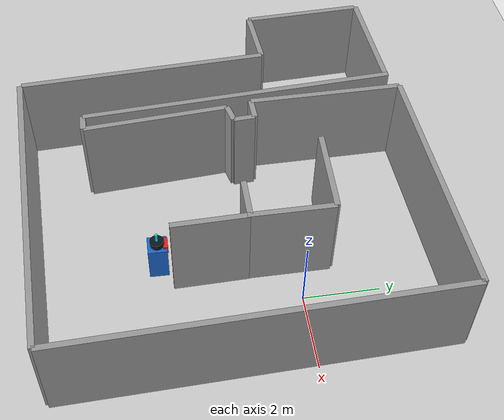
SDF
<sdf version="1.7">
 <world name="default">
  <plugin name="socnav_plugin" filename="libSocNavPlugin.so">
   <robot_name>robot</robot_name>
   <trajectory_file>/home/hunav_gz_classic_ws/SocNav3_trajectories/src0/advanced2_SFM_experiment_5-ONLY_14_STEPS-NO_VIDEO.json</trajectory_file>
   <human_slots>3</human_slots>
   <goal_angle_mesh>
    <angle_threshold>0.1</angle_threshold>
    <uri>/home/hunav_gz_classic_ws/src/socnav_gazebo_reproducer/meshes/advanced2_SFM_experiment_5-ONLY_14_STEPS-NO_VIDEO_goal_angle_00.stl</uri>
   </goal_angle_mesh>
  </plugin>
  <light name="sun" type="directional">
   <pose>0 0 10 0 -0 0</pose>
   <diffuse>0.8 0.8 0.8 1</diffuse>
   <specular>0.2 0.2 0.2 1</specular>
   <attenuation>
    <range>1000</range>
    <constant>0.9</constant>
    <linear>0.01</linear>
    <quadratic>0.001</quadratic>
   </attenuation>
   <direction>-0.5 0.1 -0.9</direction>
   <spot><inner_angle>0</inner_angle><outer_angle>0</outer_angle><falloff>0</falloff></spot>
  </light>
  <model name="ground_plane">
   <static>1</static>
   <link name="link">
    <collision name="collision">
     <geometry><plane><normal>0 0 1</normal><size>100 100</size></plane></geometry>
     <surface><friction><ode><mu>100</mu><mu2>50</mu2></ode></friction></surface>
    </collision>
    <visual name="visual">
     <cast_shadows>0</cast_shadows>
     <geometry><plane><normal>0 0 1</normal><size>100 100</size></plane></geometry>
     <material>
      <script><uri>file://media/materials/scripts/kitchen.material</uri><name>Kitchen/CounterTop_H</name></script>
     </material>
    </visual>
   </link>
  </model>
  <gravity>0 0 -9.8</gravity>
  <magnetic_field>6e-06 2.3e-05 -4.2e-05</magnetic_field>
  <atmosphere type="adiabatic"/>
  <physics type="ode">
   <max_step_size>0.001</max_step_size>
   <real_time_factor>1</real_time_factor>
   <real_time_update_rate>1000</real_time_update_rate>
  </physics>
  <scene><ambient>0.4 0.4 0.4 1</ambient><background>0.7 0.7 0.7 1</background><shadows>1</shadows></scene>
  <audio><device>default</device></audio>
  <spherical_coordinates>
   <surface_model>EARTH_WGS84</surface_model>
   <latitude_deg>0</latitude_deg>
   <longitude_deg>0</longitude_deg>
   <elevation>0</elevation>
   <heading_deg>0</heading_deg>
  </spherical_coordinates>
  <model name="robot">
   <pose>-1.4585878501570928 -3.5121129202272843 0.5 0 0 1.548966657125445</pose>
   <link name="link">
    <collision name="collision"><geometry><box><size>0.5 0.5 1.0</size></box></geometry></collision>
    <visual name="visual">
     <geometry><box><size>0.5 0.5 1.0</size></box></geometry>
     <material><ambient>0.1 0.4 0.8 1</ambient><diffuse>0.1 0.4 0.8 1</diffuse></material>
    </visual>
    <visual name="robot_top">
     <pose>0 0 0.58 0 0 0</pose>
     <geometry><cylinder><radius>0.18</radius><length>0.16</length></cylinder></geometry>
     <material><ambient>0.04 0.08 0.12 1</ambient><diffuse>0.04 0.08 0.12 1</diffuse></material>
    </visual>
    <visual name="robot_front">
     <pose>0.21 0 0.44 0 0 0</pose>
     <geometry><box><size>0.12 0.32 0.24</size></box></geometry>
     <material><ambient>0.9 0.12 0.08 1</ambient><diffuse>0.9 0.12 0.08 1</diffuse></material>
    </visual>
    <visual name="robot_sensor">
     <pose>0 0 0.78 0 0 0</pose>
     <geometry><cylinder><radius>0.035</radius><length>0.24</length></cylinder></geometry>
     <material><ambient>0.1 0.9 0.9 1</ambient><diffuse>0.1 0.9 0.9 1</diffuse></material>
    </visual>
   </link>
  </model>
  <model name="simple_world_test">
   <link name="Wall_0">
    <collision name="Wall_0_Collision">
     <geometry><box><size>1.0862999999999996 0.15 2.5</size></box></geometry>
     <pose>0 0 1.25 0 -0 0</pose>
    </collision>
    <visual name="Wall_0_Visual">
     <pose>0 0 1.25 0 -0 0</pose>
     <geometry><box><size>1.0862999999999996 0.15 2.5</size></box></geometry>
     <material>
      <script><uri>file://media/materials/scripts/gazebo.material</uri><name>Gazebo/Grey</name></script>
      <ambient>1 1 1 1</ambient>
     </material>
     <meta><layer>0</layer></meta>
    </visual>
    <pose>-1.4182750000000004 -1.2504999999999988 0 0 -0 0.0</pose>
   </link>
   <link name="Wall_1">
    <collision name="Wall_1_Collision">
     <geometry><box><size>1.938468147790931 0.15 2.5</size></box></geometry>
     <pose>0 0 1.25 0 -0 0</pose>
    </collision>
    <visual name="Wall_1_Visual">
     <pose>0 0 1.25 0 -0 0</pose>
     <geometry><box><size>1.938468147790931 0.15 2.5</size></box></geometry>
     <material>
      <script><uri>file://media/materials/scripts/gazebo.material</uri><name>Gazebo/Grey</name></script>
      <ambient>1 1 1 1</ambient>
     </material>
     <meta><layer>0</layer></meta>
    </visual>
    <pose>-0.8538250000000005 -2.219499999999999 0 0 -0 -1.548818441970472</pose>
   </link>
   <link name="Wall_2">
    <collision name="Wall_2_Collision">
     <geometry><box><size>2.1929999999999996 0.15 2.5</size></box></geometry>
     <pose>0 0 1.25 0 -0 0</pose>
    </collision>
    <visual name="Wall_2_Visual">
     <pose>0 0 1.25 0 -0 0</pose>
     <geometry><box><size>2.1929999999999996 0.15 2.5</size></box></geometry>
     <material>
      <script><uri>file://media/materials/scripts/gazebo.material</uri><name>Gazebo/Grey</name></script>
      <ambient>1 1 1 1</ambient>
     </material>
     <meta><layer>0</layer></meta>
    </visual>
    <pose>-0.8857750000000006 -0.22199999999999864 0 0 -0 1.5707963267948966</pose>
   </link>
   <link name="Wall_3">
    <collision name="Wall_3_Collision">
     <geometry><box><size>2.30196984341672 0.15 2.5</size></box></geometry>
     <pose>0 0 1.25 0 -0 0</pose>
    </collision>
    <visual name="Wall_3_Visual">
     <pose>0 0 1.25 0 -0 0</pose>
     <geometry><box><size>2.30196984341672 0.15 2.5</size></box></geometry>
     <material>
      <script><uri>file://media/materials/scripts/gazebo.material</uri><name>Gazebo/Grey</name></script>
      <ambient>1 1 1 1</ambient>
     </material>
     <meta><layer>0</layer></meta>
    </visual>
    <pose>-2.0359750000000005 0.9170000000000016 0 0 -0 3.10465936029852</pose>
   </link>
   <link name="Wall_4">
    <collision name="Wall_4_Collision">
     <geometry><box><size>3.1989974058288966 0.15 2.5</size></box></geometry>
     <pose>0 0 1.25 0 -0 0</pose>
    </collision>
    <visual name="Wall_4_Visual">
     <pose>0 0 1.25 0 -0 0</pose>
     <geometry><box><size>3.1989974058288966 0.15 2.5</size></box></geometry>
     <material>
      <script><uri>file://media/materials/scripts/gazebo.material</uri><name>Gazebo/Grey</name></script>
      <ambient>1 1 1 1</ambient>
     </material>
     <meta><layer>0</layer></meta>
    </visual>
    <pose>-8.271550000000001 1.4695000000000018 0 0 -0 -1.5275036196107106</pose>
   </link>
   <link name="Wall_5">
    <collision name="Wall_5_Collision">
     <geometry><box><size>1.62201030822865 0.15 2.5</size></box></geometry>
     <pose>0 0 1.25 0 -0 0</pose>
    </collision>
    <visual name="Wall_5_Visual">
     <pose>0 0 1.25 0 -0 0</pose>
     <geometry><box><size>1.62201030822865 0.15 2.5</size></box></geometry>
     <material>
      <script><uri>file://media/materials/scripts/gazebo.material</uri><name>Gazebo/Grey</name></script>
      <ambient>1 1 1 1</ambient>
     </material>
     <meta><layer>0</layer></meta>
    </visual>
    <pose>-7.392925 -0.07749999999999879 0 0 -0 0.06292644759137564</pose>
   </link>
   <link name="Wall_6">
    <collision name="Wall_6_Collision">
     <geometry><box><size>6.672708643422101 0.15 2.5</size></box></geometry>
     <pose>0 0 1.25 0 -0 0</pose>
    </collision>
    <visual name="Wall_6_Visual">
     <pose>0 0 1.25 0 -0 0</pose>
     <geometry><box><size>6.672708643422101 0.15 2.5</size></box></geometry>
     <material>
      <script><uri>file://media/materials/scripts/gazebo.material</uri><name>Gazebo/Grey</name></script>
      <ambient>1 1 1 1</ambient>
     </material>
     <meta><layer>0</layer></meta>
    </visual>
    <pose>-6.413125 -3.358499999999999 0 0 -0 -1.5197003841159182</pose>
   </link>
   <link name="Wall_7">
    <collision name="Wall_7_Collision">
     <geometry><box><size>8.282747219522035 0.15 2.5</size></box></geometry>
     <pose>0 0 1.25 0 -0 0</pose>
    </collision>
    <visual name="Wall_7_Visual">
     <pose>0 0 1.25 0 -0 0</pose>
     <geometry><box><size>8.282747219522035 0.15 2.5</size></box></geometry>
     <material>
      <script><uri>file://media/materials/scripts/gazebo.material</uri><name>Gazebo/Grey</name></script>
      <ambient>1 1 1 1</ambient>
     </material>
     <meta><layer>0</layer></meta>
    </visual>
    <pose>-2.0839 -6.562999999999999 0 0 -0 0.04311499786943119</pose>
   </link>
   <link name="Wall_8">
    <collision name="Wall_8_Collision">
     <geometry><box><size>10.034121037863756 0.15 2.5</size></box></geometry>
     <pose>0 0 1.25 0 -0 0</pose>
    </collision>
    <visual name="Wall_8_Visual">
     <pose>0 0 1.25 0 -0 0</pose>
     <geometry><box><size>10.034121037863756 0.15 2.5</size></box></geometry>
     <material>
      <script><uri>file://media/materials/scripts/gazebo.material</uri><name>Gazebo/Grey</name></script>
      <ambient>1 1 1 1</ambient>
     </material>
     <meta><layer>0</layer></meta>
    </visual>
    <pose>1.9098499999999996 -1.3694999999999986 0 0 -0 1.5994574692318486</pose>
   </link>
   <link name="Wall_9">
    <collision name="Wall_9_Collision">
     <geometry><box><size>6.562602239965485 0.15 2.5</size></box></geometry>
     <pose>0 0 1.25 0 -0 0</pose>
    </collision>
    <visual name="Wall_9_Visual">
     <pose>0 0 1.25 0 -0 0</pose>
     <geometry><box><size>6.562602239965485 0.15 2.5</size></box></geometry>
     <material>
      <script><uri>file://media/materials/scripts/gazebo.material</uri><name>Gazebo/Grey</name></script>
      <ambient>1 1 1 1</ambient>
     </material>
     <meta><layer>0</layer></meta>
    </visual>
    <pose>-1.5141250000000008 3.560500000000001 0 0 -0 -3.1156853972595937</pose>
   </link>
   <link name="Wall_10">
    <collision name="Wall_10_Collision">
     <geometry><box><size>4.097124577371305 0.15 2.5</size></box></geometry>
     <pose>0 0 1.25 0 -0 0</pose>
    </collision>
    <visual name="Wall_10_Visual">
     <pose>0 0 1.25 0 -0 0</pose>
     <geometry><box><size>4.097124577371305 0.15 2.5</size></box></geometry>
     <material>
      <script><uri>file://media/materials/scripts/gazebo.material</uri><name>Gazebo/Grey</name></script>
      <ambient>1 1 1 1</ambient>
     </material>
     <meta><layer>0</layer></meta>
    </visual>
    <pose>-4.7783500000000005 1.4270000000000005 0 0 -0 -1.5629980958099698</pose>
   </link>
   <link name="Wall_11">
    <collision name="Wall_11_Collision">
     <geometry><box><size>0.5966422378611826 0.15 2.5</size></box></geometry>
     <pose>0 0 1.25 0 -0 0</pose>
    </collision>
    <visual name="Wall_11_Visual">
     <pose>0 0 1.25 0 -0 0</pose>
     <geometry><box><size>0.5966422378611826 0.15 2.5</size></box></geometry>
     <material>
      <script><uri>file://media/materials/scripts/gazebo.material</uri><name>Gazebo/Grey</name></script>
      <ambient>1 1 1 1</ambient>
     </material>
     <meta><layer>0</layer></meta>
    </visual>
    <pose>-4.464175000000001 -0.6129999999999987 0 0 -0 0.02849664333500905</pose>
   </link>
   <link name="Wall_12">
    <collision name="Wall_12_Collision">
     <geometry><box><size>0.5619090696011232 0.15 2.5</size></box></geometry>
     <pose>0 0 1.25 0 -0 0</pose>
    </collision>
    <visual name="Wall_12_Visual">
     <pose>0 0 1.25 0 -0 0</pose>
     <geometry><box><size>0.5619090696011232 0.15 2.5</size></box></geometry>
     <material>
      <script><uri>file://media/materials/scripts/gazebo.material</uri><name>Gazebo/Grey</name></script>
      <ambient>1 1 1 1</ambient>
     </material>
     <meta><layer>0</layer></meta>
    </visual>
    <pose>-4.15 -0.884999999999998 0 0 -0 -1.5139059103458528</pose>
   </link>
   <link name="Wall_13">
    <collision name="Wall_13_Collision">
     <geometry><box><size>0.5041458221586286 0.15 2.5</size></box></geometry>
     <pose>0 0 1.25 0 -0 0</pose>
    </collision>
    <visual name="Wall_13_Visual">
     <pose>0 0 1.25 0 -0 0</pose>
     <geometry><box><size>0.5041458221586286 0.15 2.5</size></box></geometry>
     <material>
      <script><uri>file://media/materials/scripts/gazebo.material</uri><name>Gazebo/Grey</name></script>
      <ambient>1 1 1 1</ambient>
     </material>
     <meta><layer>0</layer></meta>
    </visual>
    <pose>-4.3789750000000005 -1.2249999999999979 0 0 -0 -2.9033010840882496</pose>
   </link>
   <link name="Wall_14">
    <collision name="Wall_14_Collision">
     <geometry><box><size>3.8188413167477915 0.15 2.5</size></box></geometry>
     <pose>0 0 1.25 0 -0 0</pose>
    </collision>
    <visual name="Wall_14_Visual">
     <pose>0 0 1.25 0 -0 0</pose>
     <geometry><box><size>3.8188413167477915 0.15 2.5</size></box></geometry>
     <material>
      <script><uri>file://media/materials/scripts/gazebo.material</uri><name>Gazebo/Grey</name></script>
      <ambient>1 1 1 1</ambient>
     </material>
     <meta><layer>0</layer></meta>
    </visual>
    <pose>-4.48015 -3.188499999999998 0 0 -0 -1.4954272830801523</pose>
   </link>
   <link name="Wall_15">
    <collision name="Wall_15_Collision">
     <geometry><box><size>0.4579500000000003 0.15 2.5</size></box></geometry>
     <pose>0 0 1.25 0 -0 0</pose>
    </collision>
    <visual name="Wall_15_Visual">
     <pose>0 0 1.25 0 -0 0</pose>
     <geometry><box><size>0.4579500000000003 0.15 2.5</size></box></geometry>
     <material>
      <script><uri>file://media/materials/scripts/gazebo.material</uri><name>Gazebo/Grey</name></script>
      <ambient>1 1 1 1</ambient>
     </material>
     <meta><layer>0</layer></meta>
    </visual>
    <pose>-4.5653500000000005 -5.0924999999999985 0 0 -0 3.141592653589793</pose>
   </link>
   <link name="Wall_16">
    <collision name="Wall_16_Collision">
     <geometry><box><size>8.396575875915135 0.15 2.5</size></box></geometry>
     <pose>0 0 1.25 0 -0 0</pose>
    </collision>
    <visual name="Wall_16_Visual">
     <pose>0 0 1.25 0 -0 0</pose>
     <geometry><box><size>8.396575875915135 0.15 2.5</size></box></geometry>
     <material>
      <script><uri>file://media/materials/scripts/gazebo.material</uri><name>Gazebo/Grey</name></script>
      <ambient>1 1 1 1</ambient>
     </material>
     <meta><layer>0</layer></meta>
    </visual>
    <pose>-5.049925 -0.9019999999999979 0 0 -0 1.6317159610497622</pose>
   </link>
   <link name="Wall_17">
    <collision name="Wall_17_Collision">
     <geometry><box><size>3.0588656234787437 0.15 2.5</size></box></geometry>
     <pose>0 0 1.25 0 -0 0</pose>
    </collision>
    <visual name="Wall_17_Visual">
     <pose>0 0 1.25 0 -0 0</pose>
     <geometry><box><size>3.0588656234787437 0.15 2.5</size></box></geometry>
     <material>
      <script><uri>file://media/materials/scripts/gazebo.material</uri><name>Gazebo/Grey</name></script>
      <ambient>1 1 1 1</ambient>
     </material>
     <meta><layer>0</layer></meta>
    </visual>
    <pose>-6.8125 3.1610000000000014 0 0 -0 0.03891313062446101</pose>
   </link>
   <static>1</static>
  </model>
 </world>
</sdf>
